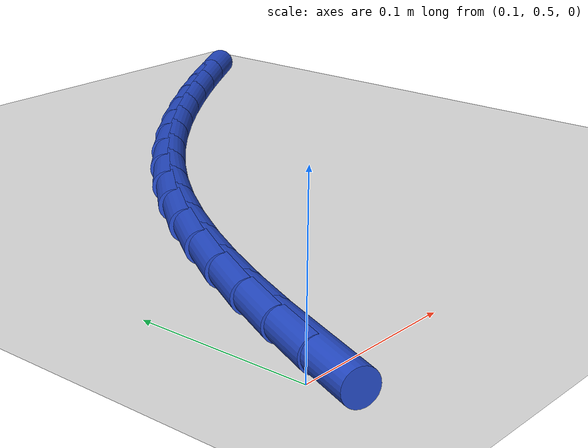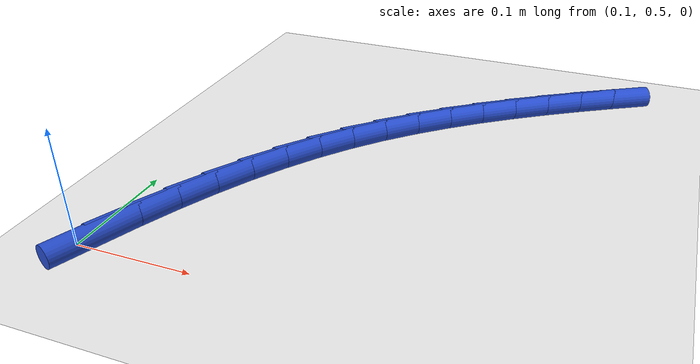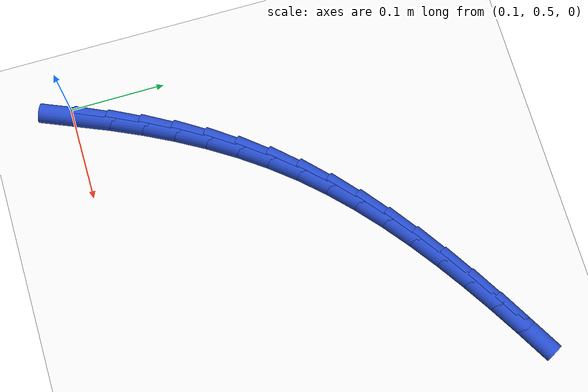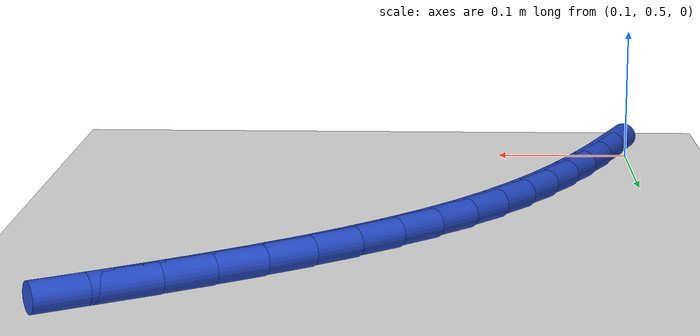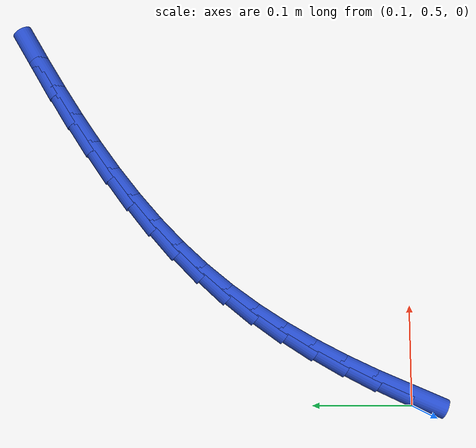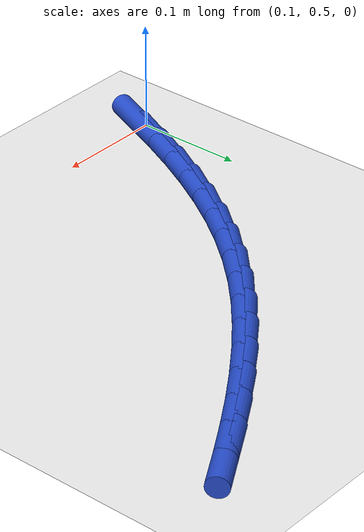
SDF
<sdf version="1.6">
 <world name="default">
  <model name="ground_plane">
   <static>1</static>
   <link name="link">
    <collision name="collision">
     <geometry><plane><normal>0 0 1</normal><size>100 100</size></plane></geometry>
     <surface><friction><ode><mu>100</mu><mu2>50</mu2></ode></friction></surface>
    </collision>
    <visual name="visual">
     <cast_shadows>0</cast_shadows>
     <geometry><plane><normal>0 0 1</normal><size>100 100</size></plane></geometry>
     <material>
      <script><uri>file://media/materials/scripts/gazebo.material</uri><name>Gazebo/WhiteGlow</name></script>
     </material>
    </visual>
   </link>
  </model>
  <model name="line">
   <link name="link_15">
    <pose>0.11372599512639905 0.5060835401115151 0.01 0 1.57 1.1693188276299384</pose>
    <collision name="collision">
     <geometry><cylinder><radius>0.01</radius><length>0.08</length></cylinder></geometry>
    </collision>
    <visual name="visual">
     <material>
      <script><name>Gazebo/Blue</name><uri>file://media/materials/scripts/gazebo.material</uri></script>
     </material>
     <geometry><cylinder><radius>0.01</radius><length>0.08</length></cylinder></geometry>
    </visual>
   </link>
   <link name="link_16">
    <pose>0.12736121677786955 0.538201486110265 0.01 0 1.57 1.1333156140355276</pose>
    <collision name="collision">
     <geometry><cylinder><radius>0.01</radius><length>0.08</length></cylinder></geometry>
    </collision>
    <visual name="visual">
     <material>
      <script><name>Gazebo/Blue</name><uri>file://media/materials/scripts/gazebo.material</uri></script>
     </material>
     <geometry><cylinder><radius>0.01</radius><length>0.08</length></cylinder></geometry>
    </visual>
   </link>
   <link name="link_17">
    <pose>0.1420537435291994 0.5696154736360691 0.01 0 1.57 1.09293848286722</pose>
    <collision name="collision">
     <geometry><cylinder><radius>0.01</radius><length>0.08</length></cylinder></geometry>
    </collision>
    <visual name="visual">
     <material>
      <script><name>Gazebo/Blue</name><uri>file://media/materials/scripts/gazebo.material</uri></script>
     </material>
     <geometry><cylinder><radius>0.01</radius><length>0.08</length></cylinder></geometry>
    </visual>
   </link>
   <link name="link_18">
    <pose>0.15789584117707167 0.6002051036678836 0.01 0 1.57 1.0479958990652938</pose>
    <collision name="collision">
     <geometry><cylinder><radius>0.01</radius><length>0.08</length></cylinder></geometry>
    </collision>
    <visual name="visual">
     <material>
      <script><name>Gazebo/Blue</name><uri>file://media/materials/scripts/gazebo.material</uri></script>
     </material>
     <geometry><cylinder><radius>0.01</radius><length>0.08</length></cylinder></geometry>
    </visual>
   </link>
   <link name="link_19">
    <pose>0.1749797755181695 0.629849977184665 0.01 0 1.57 0.9983366031011226</pose>
    <collision name="collision">
     <geometry><cylinder><radius>0.01</radius><length>0.08</length></cylinder></geometry>
    </collision>
    <visual name="visual">
     <material>
      <script><name>Gazebo/Blue</name><uri>file://media/materials/scripts/gazebo.material</uri></script>
     </material>
     <geometry><cylinder><radius>0.01</radius><length>0.08</length></cylinder></geometry>
    </visual>
   </link>
   <link name="link_20">
    <pose>0.19339781234917627 0.6584296951653701 0.01 0 1.57 0.9438797772226359</pose>
    <collision name="collision">
     <geometry><cylinder><radius>0.01</radius><length>0.08</length></cylinder></geometry>
    </collision>
    <visual name="visual">
     <material>
      <script><name>Gazebo/Blue</name><uri>file://media/materials/scripts/gazebo.material</uri></script>
     </material>
     <geometry><cylinder><radius>0.01</radius><length>0.08</length></cylinder></geometry>
    </visual>
   </link>
   <link name="link_21">
    <pose>0.21324221746677507 0.6858238585889553 0.01 0 1.57 0.8846511445592343</pose>
    <collision name="collision">
     <geometry><cylinder><radius>0.01</radius><length>0.08</length></cylinder></geometry>
    </collision>
    <visual name="visual">
     <material>
      <script><name>Gazebo/Blue</name><uri>file://media/materials/scripts/gazebo.material</uri></script>
     </material>
     <geometry><cylinder><radius>0.01</radius><length>0.08</length></cylinder></geometry>
    </visual>
   </link>
   <link name="link_22">
    <pose>0.2346052398212903 0.7119120853132177 0.01 0 1.57 0.822889807444845</pose>
    <collision name="collision">
     <geometry><cylinder><radius>0.01</radius><length>0.08</length></cylinder></geometry>
    </collision>
    <visual name="visual">
     <material>
      <script><name>Gazebo/Blue</name><uri>file://media/materials/scripts/gazebo.material</uri></script>
     </material>
     <geometry><cylinder><radius>0.01</radius><length>0.08</length></cylinder></geometry>
    </visual>
   </link>
   <link name="link_23">
    <pose>0.25752979301968654 0.7366234236621726 0.01 0 1.57 0.765528614406891</pose>
    <collision name="collision">
     <geometry><cylinder><radius>0.01</radius><length>0.08</length></cylinder></geometry>
    </collision>
    <visual name="visual">
     <material>
      <script><name>Gazebo/Blue</name><uri>file://media/materials/scripts/gazebo.material</uri></script>
     </material>
     <geometry><cylinder><radius>0.01</radius><length>0.08</length></cylinder></geometry>
    </visual>
   </link>
   <link name="link_24">
    <pose>0.2819010662322203 0.7600449505030605 0.01 0 1.57 0.7141234712473254</pose>
    <collision name="collision">
     <geometry><cylinder><radius>0.01</radius><length>0.08</length></cylinder></geometry>
    </collision>
    <visual name="visual">
     <material>
      <script><name>Gazebo/Blue</name><uri>file://media/materials/scripts/gazebo.material</uri></script>
     </material>
     <geometry><cylinder><radius>0.01</radius><length>0.08</length></cylinder></geometry>
    </visual>
   </link>
   <link name="link_25">
    <pose>0.30757279584087693 0.7822952561351211 0.01 0 1.57 0.6687328194360634</pose>
    <collision name="collision">
     <geometry><cylinder><radius>0.01</radius><length>0.08</length></cylinder></geometry>
    </collision>
    <visual name="visual">
     <material>
      <script><name>Gazebo/Blue</name><uri>file://media/materials/scripts/gazebo.material</uri></script>
     </material>
     <geometry><cylinder><radius>0.01</radius><length>0.08</length></cylinder></geometry>
    </visual>
   </link>
   <link name="link_26">
    <pose>0.33439871822764244 0.8034929308575938 0.01 0 1.57 0.6292856563128225</pose>
    <collision name="collision">
     <geometry><cylinder><radius>0.01</radius><length>0.08</length></cylinder></geometry>
    </collision>
    <visual name="visual">
     <material>
      <script><name>Gazebo/Blue</name><uri>file://media/materials/scripts/gazebo.material</uri></script>
     </material>
     <geometry><cylinder><radius>0.01</radius><length>0.08</length></cylinder></geometry>
    </visual>
   </link>
   <link name="link_27">
    <pose>0.362232569774502 0.8237565649697183 0.01 0 1.57 0.5956316358570476</pose>
    <collision name="collision">
     <geometry><cylinder><radius>0.01</radius><length>0.08</length></cylinder></geometry>
    </collision>
    <visual name="visual">
     <material>
      <script><name>Gazebo/Blue</name><uri>file://media/materials/scripts/gazebo.material</uri></script>
     </material>
     <geometry><cylinder><radius>0.01</radius><length>0.08</length></cylinder></geometry>
    </visual>
   </link>
   <link name="link_28">
    <pose>0.39092808686344144 0.8432047487707338 0.01 0 1.57 0.567582661008649</pose>
    <collision name="collision">
     <geometry><cylinder><radius>0.01</radius><length>0.08</length></cylinder></geometry>
    </collision>
    <visual name="visual">
     <material>
      <script><name>Gazebo/Blue</name><uri>file://media/materials/scripts/gazebo.material</uri></script>
     </material>
     <geometry><cylinder><radius>0.01</radius><length>0.08</length></cylinder></geometry>
    </visual>
   </link>
   <link name="link_29">
    <pose>0.4203390058764466 0.8619560725598802 0.01 0 1.57 0.5449449606191419</pose>
    <collision name="collision">
     <geometry><cylinder><radius>0.01</radius><length>0.08</length></cylinder></geometry>
    </collision>
    <visual name="visual">
     <material>
      <script><name>Gazebo/Blue</name><uri>file://media/materials/scripts/gazebo.material</uri></script>
     </material>
     <geometry><cylinder><radius>0.01</radius><length>0.08</length></cylinder></geometry>
    </visual>
   </link>
   <link name="link_30">
    <pose>0.4503190631955027 0.8801291266363965 0.01 0 1.57 0.5275425074604615</pose>
    <collision name="collision">
     <geometry><cylinder><radius>0.01</radius><length>0.08</length></cylinder></geometry>
    </collision>
    <visual name="visual">
     <material>
      <script><name>Gazebo/Blue</name><uri>file://media/materials/scripts/gazebo.material</uri></script>
     </material>
     <geometry><cylinder><radius>0.01</radius><length>0.08</length></cylinder></geometry>
    </visual>
   </link>
  </model>
 </world>
</sdf>
